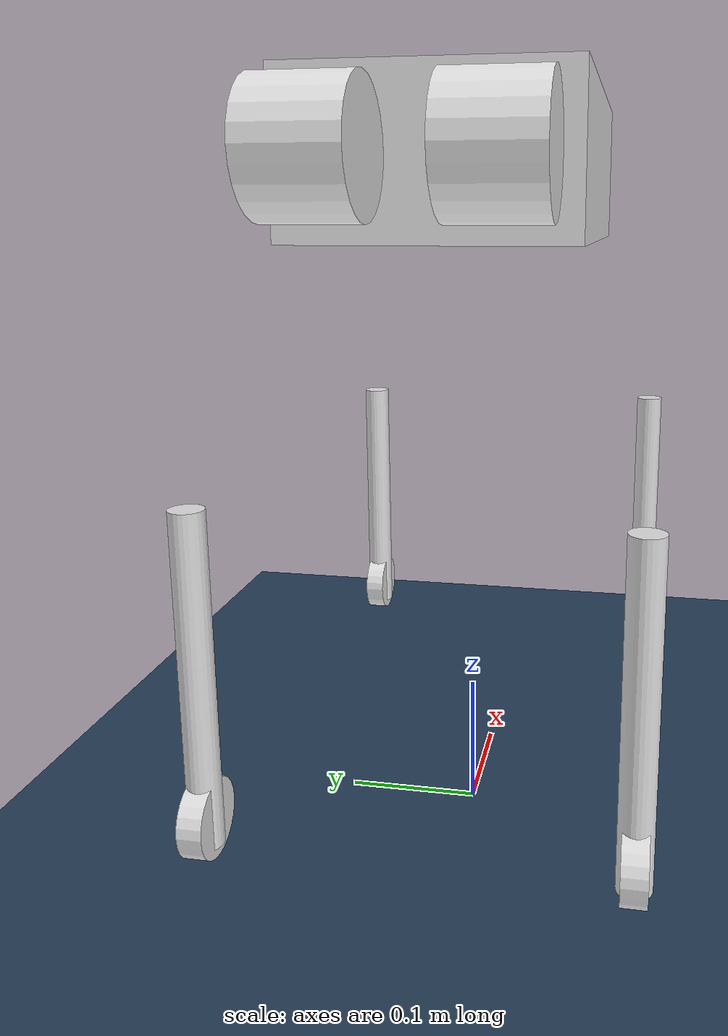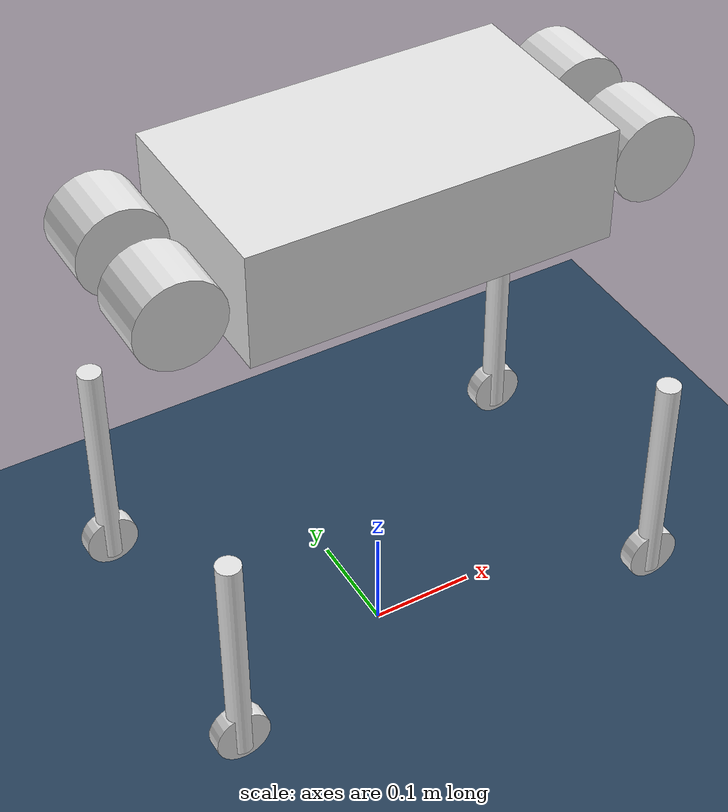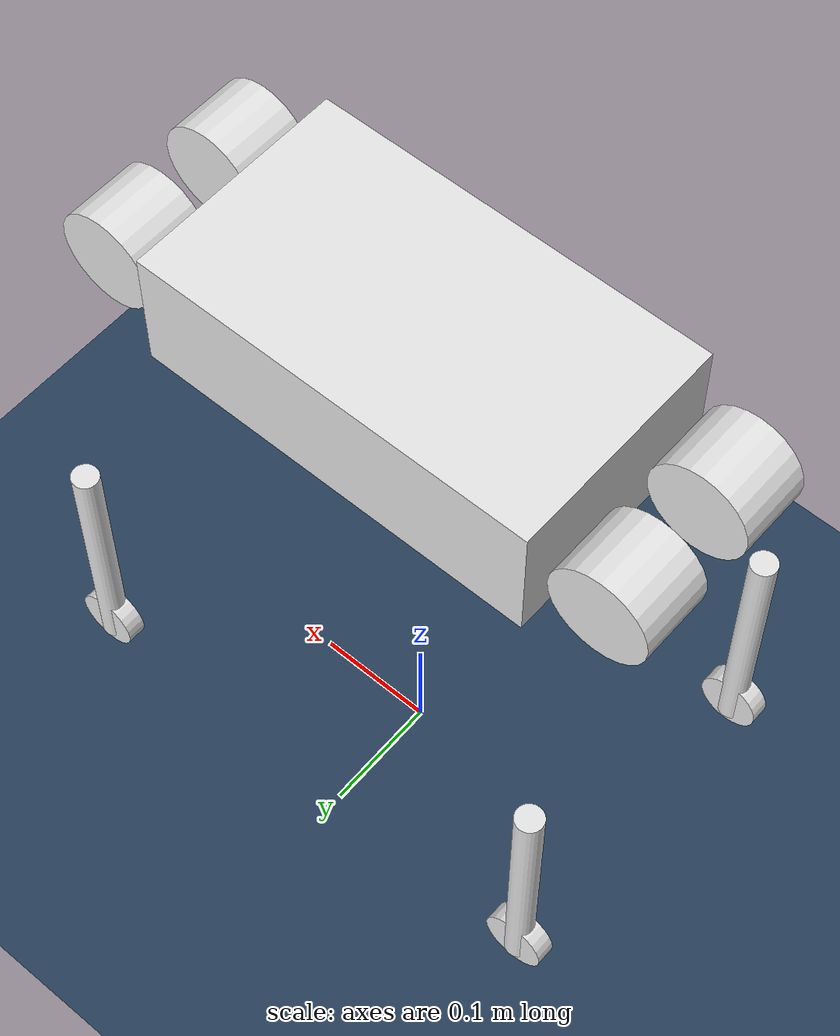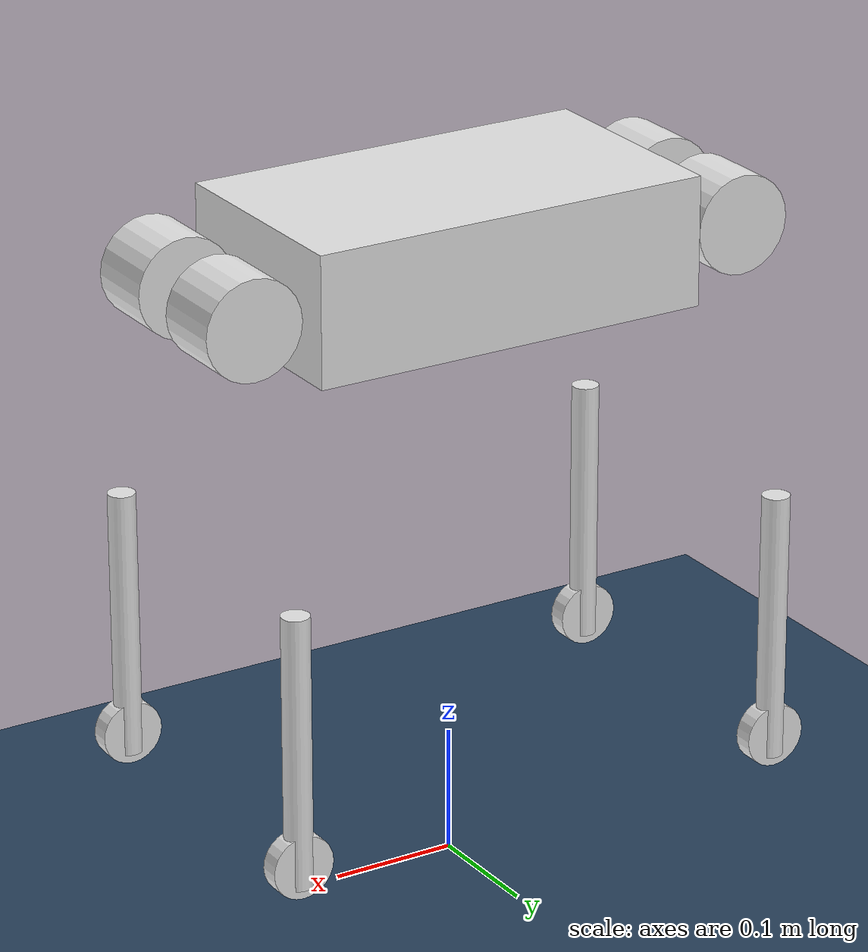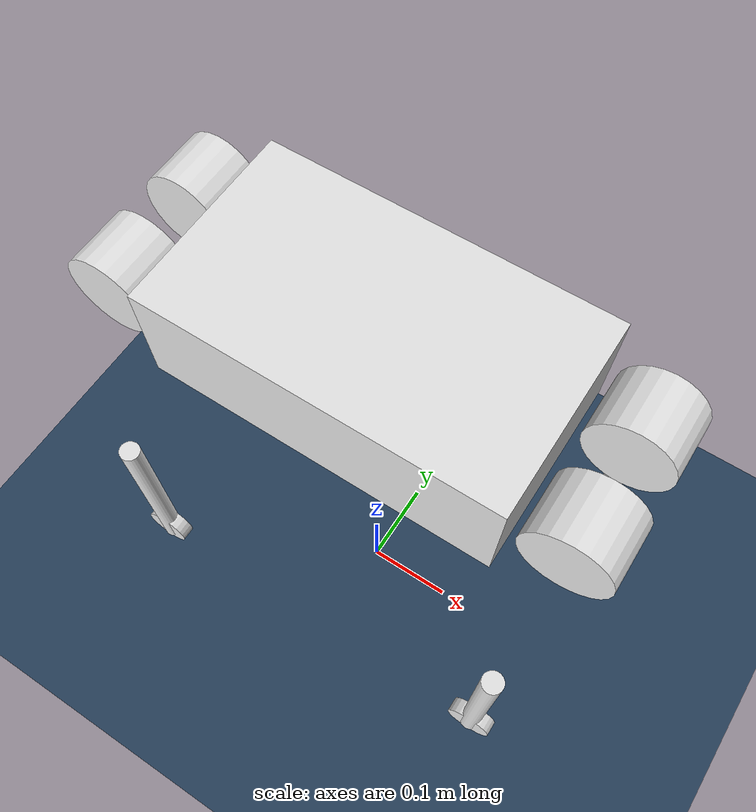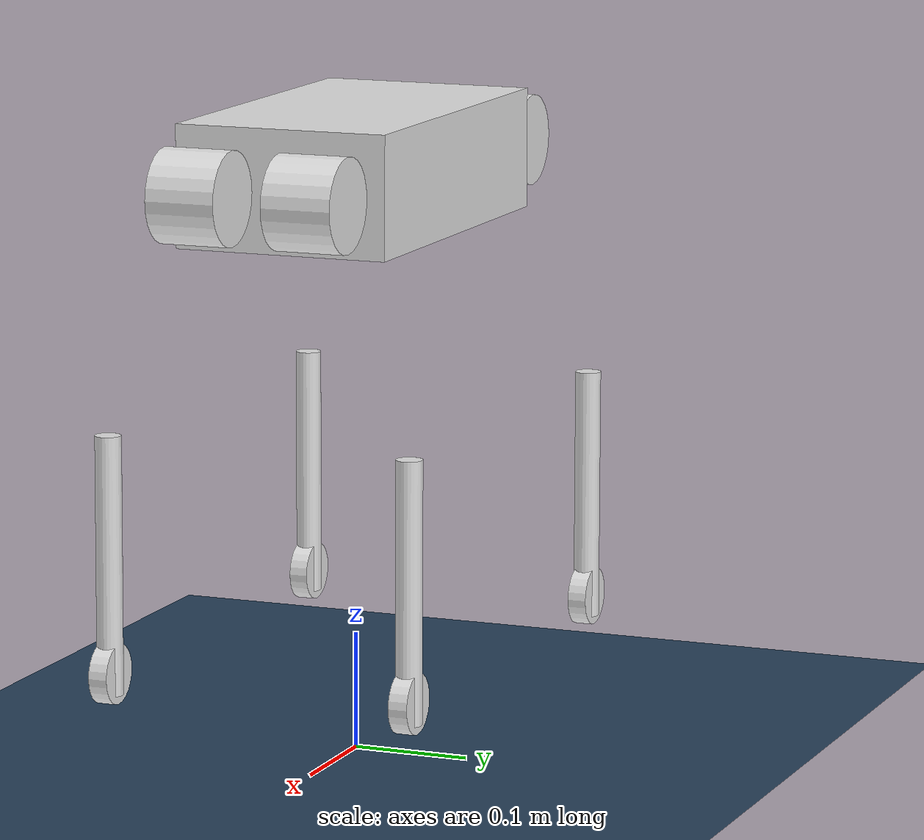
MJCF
<mujoco model="scene">
  <option timestep="0.005"/>
  <include file="mujina.xml"/>

  <visual>
    <headlight diffuse="0.6 0.6 0.6" ambient="0.3 0.3 0.3" specular="0 0 0"/>
    <rgba haze="0.15 0.25 0.35 1"/>
    <global azimuth="120" elevation="-20"/>
  </visual>

  <asset>
    <texture type="skybox" builtin="gradient" rgb1="0.3 0.5 0.7" rgb2="0 0 0" width="512" height="3072"/>
    <texture type="2d" name="groundplane" builtin="checker" mark="edge" rgb1="0.2 0.3 0.4" rgb2="0.1 0.2 0.3" markrgb="0.8 0.8 0.8" width="300" height="300"/>
    <material name="groundplane" texture="groundplane" texuniform="true" texrepeat="5 5" reflectance="0.2"/>
  </asset>

  <worldbody>
    <light pos="0 0 1.5" dir="0 0 -1" directional="true"/>
    <geom name="floor" pos="0 0 0.0" size="0 0 0.05" type="plane" material="groundplane"/>
  </worldbody>

  <actuator>
    <position name="FR_collar_joint" kp="50" kv="2.0" joint="FR_collar_joint"/>
    <position name="FR_hip_joint" kp="50" kv="2.0" joint="FR_hip_joint" />
    <position name="FR_knee_joint" kp="30" kv="0.5" joint="FR_knee_joint" />
    <position name="FL_collar_joint" kp="50" kv="2.0" joint="FL_collar_joint"/>
    <position name="FL_hip_joint" kp="50" kv="2.0" joint="FL_hip_joint" />
    <position name="FL_knee_joint" kp="30" kv="0.5" joint="FL_knee_joint" />
    <position name="RR_collar_joint" kp="50" kv="2.0" joint="RR_collar_joint"/>
    <position name="RR_hip_joint" kp="50" kv="2.0" joint="RR_hip_joint" />
    <position name="RR_knee_joint" kp="30" kv="0.5" joint="RR_knee_joint" />
    <position name="RL_collar_joint" kp="50" kv="2.0" joint="RL_collar_joint"/>
    <position name="RL_hip_joint" kp="50" kv="2.0" joint="RL_hip_joint" />
    <position name="RL_knee_joint" kp="30" kv="0.5" joint="RL_knee_joint" />
  </actuator>

  <keyframe>
    <key name="STANDBY" qpos="0 0 0 0 0 0 0 -0.15 1.325 -2.6 0.15 1.325 -2.6 -0.15 1.325 -2.6 0.15 1.325 -2.6" ctrl="-0.15 1.325 -2.6 0.15 1.325 -2.6 -0.15 1.325 -2.6 0.15 1.325 -2.6" />
  </keyframe>

</mujoco>

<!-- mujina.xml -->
<mujoco model="mujina">
  <compiler angle="radian"/>

  <worldbody>
    <body name="base_link" pos="0 0 0.5">
      <inertial pos="-11.002e-03 5.891e-03 -1.819e-03" mass="4.726259" diaginertia="0.016272346 0.058198068 0.0667135599"/>
      <joint name="base_joint" type="free" limited="false" actuatorfrclimited="false"/>
      <geom size="0.1625 0.0915 0.05125" pos="0 0 0" type="box" rgba="0.9 0.9 0.9 1"/>
      <body name="FL_scapula" pos="0.15675 0.05 0">
        <inertial pos="0.047243 -0.002208 0.000399" quat="0.504504 0.506174 0.488002 0.501116" mass="0.482508" diaginertia="0.000556483 0.000423489 0.000307655"/>
        <joint name="FL_collar_joint" pos="0 0 0" axis="1 0 0" range="-0.785398 0.785398" actuatorfrcrange="-12 12" armature="0.02"/>
        <geom size="0.03925 0.0295" pos="0.05325 0 0" quat="0.707388 0.706825 0 0" type="cylinder" rgba="0.9 0.9 0.9 1"/>
        <body name="FL_thigh" pos="0.05325 0.018 0">
          <inertial pos="-0.012014 0.044544 -0.036915" quat="0.779883 0.146372 0.0331461 0.607667" mass="0.990346" diaginertia="0.00518076 0.00483897 0.00103805"/>
          <joint name="FL_hip_joint" pos="0 0 0" axis="0 1 0" range="-1.5708 3.14159" actuatorfrcrange="-12 12" armature="0.02"/>
          <body name="FL_calf" pos="0 0.064 -0.2">
            <inertial pos="0.00183874 0 -0.0877863" quat="0.707095 -0.00484439 -0.00484073 0.707085" mass="0.254095" diaginertia="0.00212502 0.00208722 6.24465e-05"/>
            <joint name="FL_knee_joint" pos="0 0 0" axis="0 1 0" range="-2.79253 0.349066" actuatorfrcrange="-24 24"/>
            <geom size="0.011 0.1085" pos="0 0 -0.109" type="cylinder" rgba="0.9 0.9 0.9 1"/>
            <geom size="0.025 0.008" pos="0 0 -0.2" quat="0.707388 0.706825 0 0" type="cylinder" rgba="0.9 0.9 0.9 1"/>
          </body>
        </body>
      </body>
      <body name="FR_scapula" pos="0.15675 -0.05 0">
        <inertial pos="0.047243 0.002208 0.000399" quat="0.501116 0.488002 0.506174 0.504504" mass="0.482508" diaginertia="0.000556483 0.000423489 0.000307656"/>
        <joint name="FR_collar_joint" pos="0 0 0" axis="1 0 0" range="-0.785398 0.785398" actuatorfrcrange="-12 12" armature="0.02"/>
        <geom size="0.03925 0.0295" pos="0.05325 0 0" quat="0.707388 0.706825 0 0" type="cylinder" rgba="0.9 0.9 0.9 1"/>
        <body name="FR_thigh" pos="0.05325 -0.018 0">
          <inertial pos="-0.012106 -0.044357 -0.036699" quat="0.604614 0.0322611 0.147228 0.782129" mass="0.990345" diaginertia="0.00519837 0.00487183 0.00103706"/>
          <joint name="FR_hip_joint" pos="0 0 0" axis="0 1 0" range="-3.14159 1.5708" actuatorfrcrange="-12 12" armature="0.02"/>
          <body name="FR_calf" pos="0 -0.064 -0.2">
            <inertial pos="0.00183874 0 -0.0877864" quat="0.707096 -0.00484422 -0.00484064 0.707085" mass="0.254095" diaginertia="0.00212503 0.00208723 6.24467e-05"/>
            <joint name="FR_knee_joint" pos="0 0 0" axis="0 1 0" range="-2.79253 0.349066" actuatorfrcrange="-24 24"/>
            <geom size="0.011 0.1085" pos="0 0 -0.109" type="cylinder" rgba="0.9 0.9 0.9 1"/>
            <geom size="0.025 0.008" pos="0 0 -0.2" quat="0.707388 0.706825 0 0" type="cylinder" rgba="0.9 0.9 0.9 1"/>
          </body>
        </body>
      </body>
      <body name="RL_scapula" pos="-0.15675 0.05 0">
        <inertial pos="-0.037187 -0.001781 -0.000391" quat="0.508061 0.495728 0.499972 0.496141" mass="0.493371" diaginertia="0.00057148 0.000441231 0.000313163"/>
        <joint name="RL_collar_joint" pos="0 0 0" axis="1 0 0" range="-0.785398 0.785398" actuatorfrcrange="-12 12" armature="0.02"/>
        <geom size="0.03925 0.0295" pos="-0.05325 0 0" quat="0.707388 0.706825 0 0" type="cylinder" rgba="0.9 0.9 0.9 1"/>
        <body name="RL_thigh" pos="-0.05325 0.018 0">
          <inertial pos="-0.011894 0.045143 -0.036371" quat="0.780827 0.140192 0.0305875 0.608047" mass="0.994692" diaginertia="0.00513381 0.00482469 0.00102538"/>
          <joint name="RL_hip_joint" pos="0 0 0" axis="0 1 0" range="-1.5708 3.14159" actuatorfrcrange="-12 12" armature="0.02"/>
          <body name="RL_calf" pos="0 0.064 -0.2">
            <inertial pos="0.00183702 0 -0.0877873" quat="0.707093 -0.00485201 -0.00484844 0.707088" mass="0.254095" diaginertia="0.00212499 0.00208719 6.24475e-05"/>
            <joint name="RL_knee_joint" pos="0 0 0" axis="0 1 0" range="-2.79253 0.349066" actuatorfrcrange="-24 24"/>
            <geom size="0.011 0.1085" pos="0 0 -0.109" type="cylinder" rgba="0.9 0.9 0.9 1"/>
            <geom size="0.025 0.008" pos="0 0 -0.2" quat="0.707388 0.706825 0 0" type="cylinder" rgba="0.9 0.9 0.9 1"/>
          </body>
        </body>
      </body>
      <body name="RR_scapula" pos="-0.15675 -0.05 0">
        <inertial pos="-0.037187 -0.001781 -0.000391" quat="0.508061 0.495728 0.499972 0.496141" mass="0.493371" diaginertia="0.00057148 0.000441231 0.000313163"/>
        <joint name="RR_collar_joint" pos="0 0 0" axis="1 0 0" range="-0.785398 0.785398" actuatorfrcrange="-12 12" armature="0.02"/>
        <geom size="0.03925 0.0295" pos="-0.05325 0 0" quat="0.707388 0.706825 0 0" type="cylinder" rgba="0.9 0.9 0.9 1"/>
        <body name="RR_thigh" pos="-0.05325 -0.018 0">
          <inertial pos="-0.01182 -0.045143 -0.03621" quat="0.607579 0.0313087 0.139711 0.781248" mass="0.994692" diaginertia="0.00514536 0.00483953 0.00102571"/>
          <joint name="RR_hip_joint" pos="0 0 0" axis="0 1 0" range="-3.14159 1.5708" actuatorfrcrange="-12 12" armature="0.02"/>
          <body name="RR_calf" pos="0 -0.064 -0.2">
            <inertial pos="0.00183702 0 -0.0877873" quat="0.707093 -0.00485201 -0.00484844 0.707088" mass="0.254095" diaginertia="0.00212499 0.00208719 6.24475e-05"/>
            <joint name="RR_knee_joint" pos="0 0 0" axis="0 1 0" range="-2.79253 0.349066" actuatorfrcrange="-24 24"/>
            <geom size="0.011 0.1085" pos="0 0 -0.109" type="cylinder" rgba="0.9 0.9 0.9 1"/>
            <geom size="0.025 0.008" pos="0 0 -0.2" quat="0.707388 0.706825 0 0" type="cylinder" rgba="0.9 0.9 0.9 1"/>
          </body>
        </body>
      </body>
    </body>
  </worldbody>
</mujoco>
